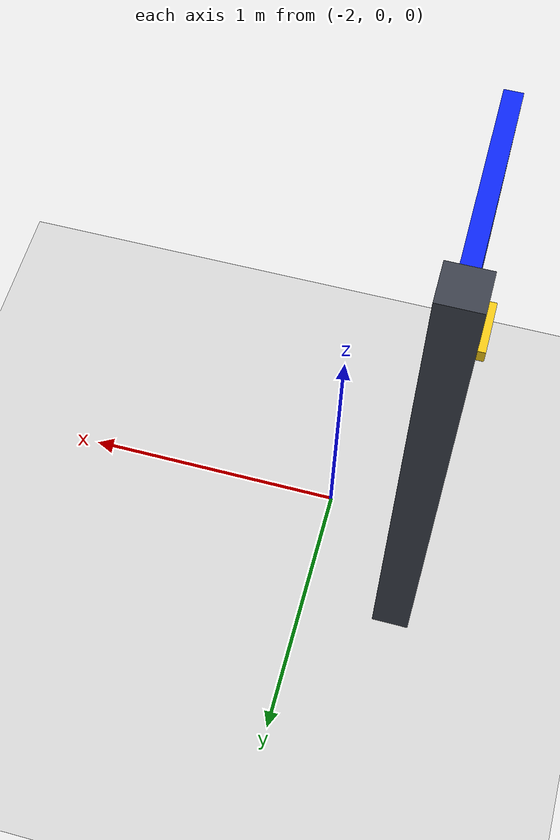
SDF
<?xml version='1.0'?>
<sdf version='1.6'>
  <world name='manipulation_demo'>
    <physics name='default_physics' type='ode'><max_step_size>0.001</max_step_size><real_time_update_rate>1000</real_time_update_rate></physics>
    <plugin name='gz::sim::systems::Physics' filename='gz-sim-physics-system'/>
    <plugin name='gz::sim::systems::UserCommands' filename='gz-sim-user-commands-system'/>
    <plugin name='gz::sim::systems::SceneBroadcaster' filename='gz-sim-scene-broadcaster-system'/>
    <plugin name='gz::sim::systems::Sensors' filename='gz-sim-sensors-system'><render_engine>ogre2</render_engine></plugin>
    <light type='directional' name='sun'><pose>0 0 8 0 0 0</pose><diffuse>0.9 0.9 0.9 1</diffuse><direction>-0.3 0.2 -1</direction></light>
    <model name='ground'><static>true</static><link name='link'><collision name='collision'><geometry><plane><normal>0 0 1</normal><size>8 8</size></plane></geometry></collision><visual name='visual'><geometry><plane><normal>0 0 1</normal><size>8 8</size></plane></geometry></visual></link></model>
    <model name='proof_overhead_camera'>
      <static>true</static>
      <pose>-2.80 0.00 5.00 0 1.5708 0</pose>
      <link name='link'>
        <sensor name='proof_overhead_camera' type='camera'>
          <always_on>true</always_on>
          <update_rate>10</update_rate>
          <topic>/proof/overhead/image</topic>
          <camera name='proof_overhead'>
            <horizontal_fov>1.20</horizontal_fov>
            <image>
              <width>1280</width>
              <height>720</height>
              <format>R8G8B8</format>
            </image>
            <clip>
              <near>0.10</near>
              <far>20.0</far>
            </clip>
          </camera>
        </sensor>
      </link>
    </model>
    <model name='blue_hinged_door'>
      <pose>-2.35 -0.40 0 0 0 0</pose>
      <link name='frame'>
        <inertial><mass>20</mass><inertia><ixx>1</ixx><iyy>1</iyy><izz>1</izz></inertia></inertial>
        <visual name='hinge_post'>
          <pose>0 0.80 1.0 0 0 0</pose>
          <geometry><box><size>0.14 0.14 2.2</size></box></geometry>
          <material><ambient>0.16 0.18 0.21 1</ambient><diffuse>0.22 0.24 0.28 1</diffuse></material>
        </visual>
      </link>
      <joint name='frame_fixed' type='fixed'><parent>world</parent><child>frame</child></joint>
      <link name='panel'>
        <pose>0 0.40 1.0 0 0 0</pose>
        <inertial><mass>8</mass><inertia><ixx>3.1</ixx><iyy>2.7</iyy><izz>0.43</izz></inertia></inertial>
        <collision name='panel_collision'><geometry><box><size>0.06 0.80 2.0</size></box></geometry></collision>
        <visual name='panel_visual'><geometry><box><size>0.06 0.80 2.0</size></box></geometry><material><ambient>0.04 0.14 0.92 1</ambient><diffuse>0.04 0.14 0.92 1</diffuse></material></visual>
        <collision name='handle_collision'>
          <pose>-0.075 -0.30 -0.05 0 0 0</pose>
          <geometry><box><size>0.09 0.22 0.06</size></box></geometry>
        </collision>
        <visual name='handle_backplate'>
          <pose>-0.036 -0.30 -0.05 0 0 0</pose>
          <geometry><box><size>0.025 0.09 0.26</size></box></geometry>
          <material><ambient>0.82 0.66 0.05 1</ambient><diffuse>0.92 0.76 0.08 1</diffuse></material>
        </visual>
        <visual name='lever_handle'>
          <pose>-0.082 -0.30 -0.05 0 0 0</pose>
          <geometry><box><size>0.055 0.22 0.055</size></box></geometry>
          <material><ambient>0.82 0.66 0.05 1</ambient><diffuse>0.92 0.76 0.08 1</diffuse></material>
        </visual>
      </link>
      <joint name='door_hinge' type='revolute'><pose>0 0.40 0 0 0 0</pose><parent>frame</parent><child>panel</child><axis><xyz>0 0 1</xyz><limit><lower>0</lower><upper>2.20</upper><effort>80</effort><velocity>1.4</velocity></limit><dynamics><damping>2.0</damping></dynamics></axis></joint>
      <plugin filename='ignition-gazebo-joint-position-controller-system' name='gz::sim::systems::JointPositionController'><joint_name>door_hinge</joint_name><topic>/sim/door_hinge_position_cmd</topic><p_gain>70</p_gain><d_gain>8</d_gain><cmd_max>80</cmd_max><cmd_min>-80</cmd_min></plugin>
      <plugin filename='gz-sim-joint-state-publisher-system' name='gz::sim::systems::JointStatePublisher'><topic>/door_joint_states</topic></plugin>
    </model>
  </world>
</sdf>
